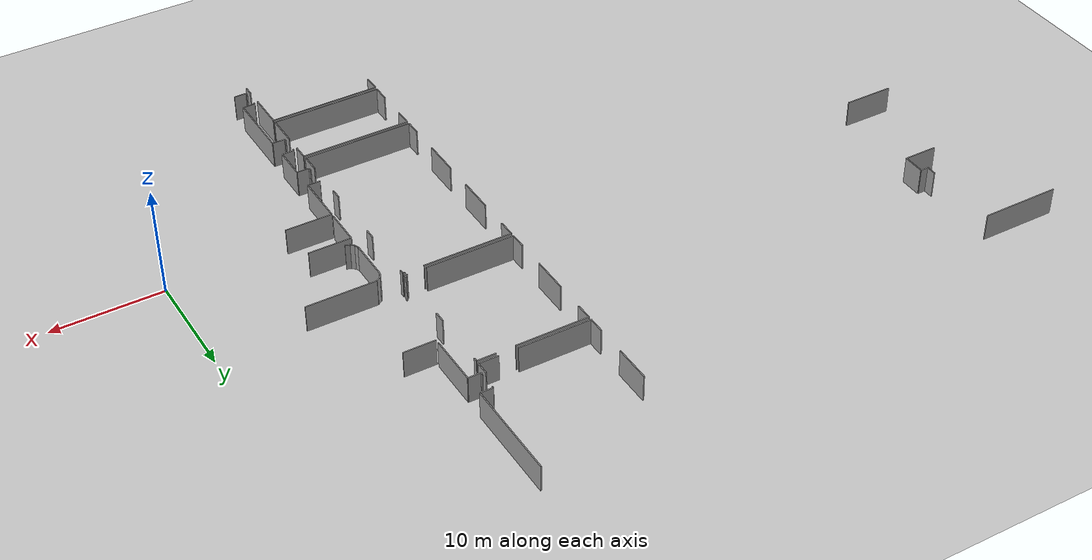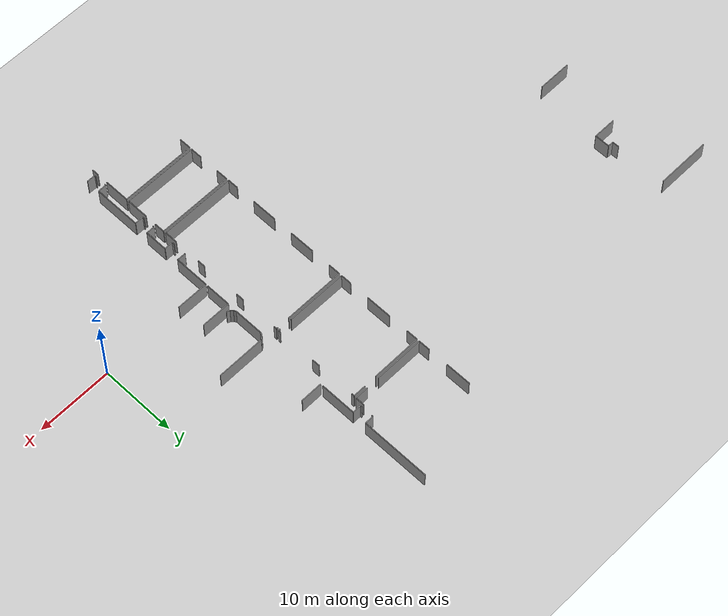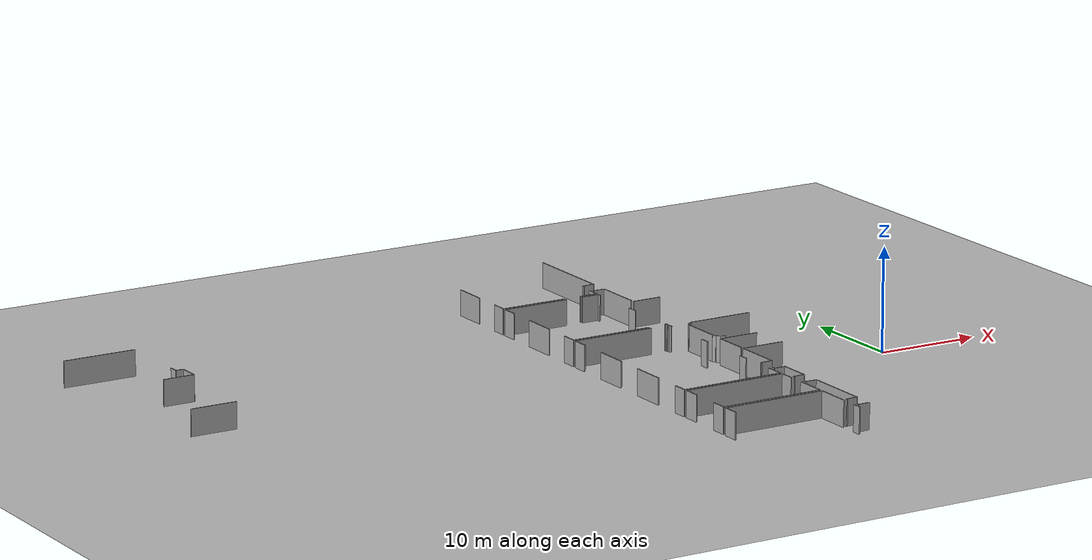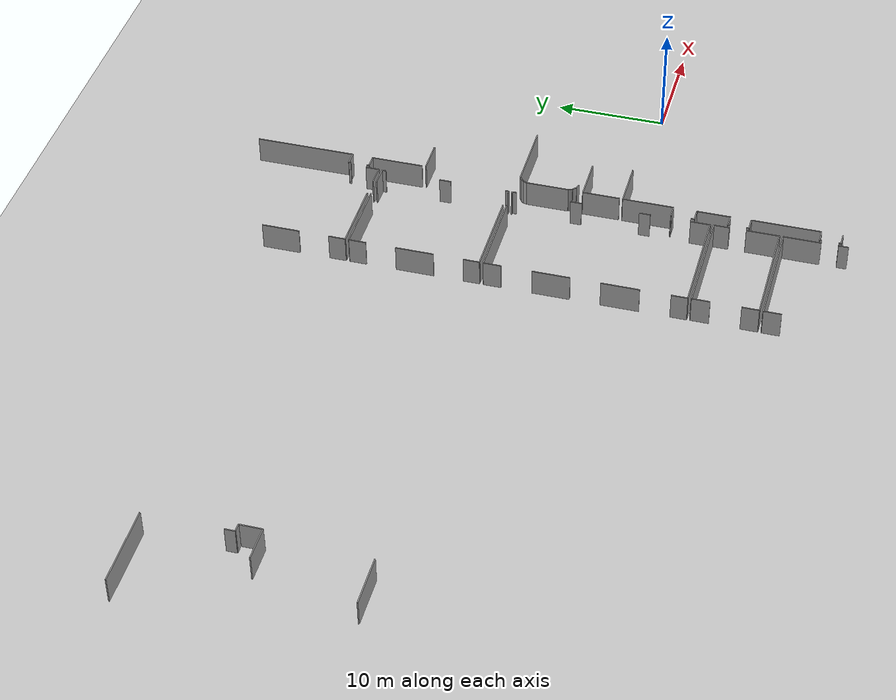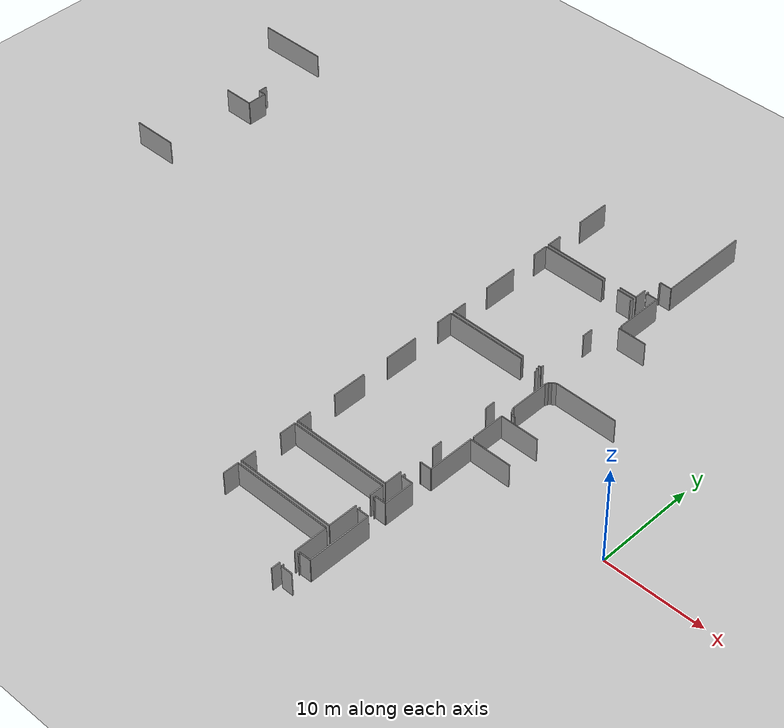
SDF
<sdf version="1.6">
 <world name="default">
  <model name="ground_plane">
   <static>1</static>
   <link name="link">
    <collision name="collision">
     <geometry><plane><normal>0 0 1</normal><size>100 100</size></plane></geometry>
     <surface><friction><ode><mu>100</mu><mu2>50</mu2></ode></friction></surface>
    </collision>
    <visual name="visual">
     <cast_shadows>0</cast_shadows>
     <geometry><plane><normal>0 0 1</normal><size>100 100</size></plane></geometry>
     <material>
      <script><uri>file://media/materials/scripts/gazebo.material</uri><name>Gazebo/Grey</name></script>
     </material>
    </visual>
   </link>
  </model>
  <model name="0510045922_A-40">
   <static>1</static>
   <link name="Wall_674">
    <collision name="Wall_674_Collision">
     <geometry><box><size>4.49615659156 0.1 2.5</size></box></geometry>
     <pose>2.24807829578 0 1.25 0 0 0</pose>
    </collision>
    <visual name="Wall_674_Visual">
     <pose>2.24807829578 0 1.25 0 0 0</pose>
     <geometry><box><size>4.49615659156 0.1 2.5</size></box></geometry>
     <material>
      <script><uri>file://media/materials/scripts/gazebo.material</uri><name>Gazebo/Grey</name></script>
      <ambient>1 1 1 1</ambient>
     </material>
    </visual>
    <pose>72.5084069391 -91.5883332274 0 0 0 -3.140914266</pose>
   </link>
   <link name="Wall_679">
    <collision name="Wall_679_Collision">
     <geometry><box><size>0.917582766728 0.1 2.5</size></box></geometry>
     <pose>0.458791383364 0 1.25 0 0 0</pose>
    </collision>
    <visual name="Wall_679_Visual">
     <pose>0.458791383364 0 1.25 0 0 0</pose>
     <geometry><box><size>0.917582766728 0.1 2.5</size></box></geometry>
     <material>
      <script><uri>file://media/materials/scripts/gazebo.material</uri><name>Gazebo/Grey</name></script>
      <ambient>1 1 1 1</ambient>
     </material>
    </visual>
    <pose>72.5391624833 -79.3992247569 0 0 0 -1.57079632679</pose>
   </link>
   <link name="Wall_680">
    <collision name="Wall_680_Collision">
     <geometry><box><size>0.738387240262 0.1 2.5</size></box></geometry>
     <pose>0.369193620131 0 1.25 0 0 0</pose>
    </collision>
    <visual name="Wall_680_Visual">
     <pose>0.369193620131 0 1.25 0 0 0</pose>
     <geometry><box><size>0.738387240262 0.1 2.5</size></box></geometry>
     <material>
      <script><uri>file://media/materials/scripts/gazebo.material</uri><name>Gazebo/Grey</name></script>
      <ambient>1 1 1 1</ambient>
     </material>
    </visual>
    <pose>72.5391624833 -80.3168075237 0 0 0 0.0</pose>
   </link>
   <link name="Wall_681">
    <collision name="Wall_681_Collision">
     <geometry><box><size>1.99860202072 0.1 2.5</size></box></geometry>
     <pose>0.999301010358 0 1.25 0 0 0</pose>
    </collision>
    <visual name="Wall_681_Visual">
     <pose>0.999301010358 0 1.25 0 0 0</pose>
     <geometry><box><size>1.99860202072 0.1 2.5</size></box></geometry>
     <material>
      <script><uri>file://media/materials/scripts/gazebo.material</uri><name>Gazebo/Grey</name></script>
      <ambient>1 1 1 1</ambient>
     </material>
    </visual>
    <pose>73.2775497236 -80.3168075237 0 0 0 -1.57079632679</pose>
   </link>
   <link name="Wall_682">
    <collision name="Wall_682_Collision">
     <geometry><box><size>3.05242422317 0.1 2.5</size></box></geometry>
     <pose>1.52621211158 0 1.25 0 0 0</pose>
    </collision>
    <visual name="Wall_682_Visual">
     <pose>1.52621211158 0 1.25 0 0 0</pose>
     <geometry><box><size>3.05242422317 0.1 2.5</size></box></geometry>
     <material>
      <script><uri>file://media/materials/scripts/gazebo.material</uri><name>Gazebo/Grey</name></script>
      <ambient>1 1 1 1</ambient>
     </material>
    </visual>
    <pose>73.2775497236 -82.3154095444 0 0 0 3.14159265359</pose>
   </link>
   <link name="Wall_691">
    <collision name="Wall_691_Collision">
     <geometry><box><size>7.15002859503 0.1 2.5</size></box></geometry>
     <pose>3.57501429752 0 1.25 0 0 0</pose>
    </collision>
    <visual name="Wall_691_Visual">
     <pose>3.57501429752 0 1.25 0 0 0</pose>
     <geometry><box><size>7.15002859503 0.1 2.5</size></box></geometry>
     <material>
      <script><uri>file://media/materials/scripts/gazebo.material</uri><name>Gazebo/Grey</name></script>
      <ambient>1 1 1 1</ambient>
     </material>
    </visual>
    <pose>72.5139988562 -72.4827857914 0 0 0 3.14159265359</pose>
   </link>
   <link name="Wall_1214">
    <collision name="Wall_1214_Collision">
     <geometry><box><size>1.52837262502 0.1 2.5</size></box></geometry>
     <pose>0.764186312512 0 1.25 0 0 0</pose>
    </collision>
    <visual name="Wall_1214_Visual">
     <pose>0.764186312512 0 1.25 0 0 0</pose>
     <geometry><box><size>1.52837262502 0.1 2.5</size></box></geometry>
     <material>
      <script><uri>file://media/materials/scripts/gazebo.material</uri><name>Gazebo/Grey</name></script>
      <ambient>1 1 1 1</ambient>
     </material>
    </visual>
    <pose>107.748668742 -78.0815657368 0 0 0 1.57079632679</pose>
   </link>
   <link name="Wall_1215">
    <collision name="Wall_1215_Collision">
     <geometry><box><size>3.42276164453 0.1 2.5</size></box></geometry>
     <pose>1.71138082227 0 1.25 0 0 0</pose>
    </collision>
    <visual name="Wall_1215_Visual">
     <pose>1.71138082227 0 1.25 0 0 0</pose>
     <geometry><box><size>3.42276164453 0.1 2.5</size></box></geometry>
     <material>
      <script><uri>file://media/materials/scripts/gazebo.material</uri><name>Gazebo/Grey</name></script>
      <ambient>1 1 1 1</ambient>
     </material>
    </visual>
    <pose>107.748668742 -73.8167122069 0 0 0 1.57079632679</pose>
   </link>
   <link name="Wall_1219">
    <collision name="Wall_1219_Collision">
     <geometry><box><size>1.21446273114 0.1 2.5</size></box></geometry>
     <pose>0.607231365572 0 1.25 0 0 0</pose>
    </collision>
    <visual name="Wall_1219_Visual">
     <pose>0.607231365572 0 1.25 0 0 0</pose>
     <geometry><box><size>1.21446273114 0.1 2.5</size></box></geometry>
     <material>
      <script><uri>file://media/materials/scripts/gazebo.material</uri><name>Gazebo/Grey</name></script>
      <ambient>1 1 1 1</ambient>
     </material>
    </visual>
    <pose>117.842333355 -76.8841329351 0 0 0 -1.57079632679</pose>
   </link>
   <link name="Wall_1220">
    <collision name="Wall_1220_Collision">
     <geometry><box><size>1.7980555379 0.1 2.5</size></box></geometry>
     <pose>0.899027768952 0 1.25 0 0 0</pose>
    </collision>
    <visual name="Wall_1220_Visual">
     <pose>0.899027768952 0 1.25 0 0 0</pose>
     <geometry><box><size>1.7980555379 0.1 2.5</size></box></geometry>
     <material>
      <script><uri>file://media/materials/scripts/gazebo.material</uri><name>Gazebo/Grey</name></script>
      <ambient>1 1 1 1</ambient>
     </material>
    </visual>
    <pose>117.842333355 -78.0985956663 0 0 0 3.14159265359</pose>
   </link>
   <link name="Wall_1221">
    <collision name="Wall_1221_Collision">
     <geometry><box><size>6.5702705296 0.1 2.5</size></box></geometry>
     <pose>3.2851352648 0 1.25 0 0 0</pose>
    </collision>
    <visual name="Wall_1221_Visual">
     <pose>3.2851352648 0 1.25 0 0 0</pose>
     <geometry><box><size>6.5702705296 0.1 2.5</size></box></geometry>
     <material>
      <script><uri>file://media/materials/scripts/gazebo.material</uri><name>Gazebo/Grey</name></script>
      <ambient>1 1 1 1</ambient>
     </material>
    </visual>
    <pose>114.318917201 -78.0985956663 0 0 0 3.13900068292</pose>
   </link>
   <link name="Wall_1222">
    <collision name="Wall_1222_Collision">
     <geometry><box><size>4.72415326937 0.1 2.5</size></box></geometry>
     <pose>2.36207663468 0 1.25 0 0 0</pose>
    </collision>
    <visual name="Wall_1222_Visual">
     <pose>2.36207663468 0 1.25 0 0 0</pose>
     <geometry><box><size>4.72415326937 0.1 2.5</size></box></geometry>
     <material>
      <script><uri>file://media/materials/scripts/gazebo.material</uri><name>Gazebo/Grey</name></script>
      <ambient>1 1 1 1</ambient>
     </material>
    </visual>
    <pose>119.322666328 -81.8085785092 0 0 0 1.57079632679</pose>
   </link>
   <link name="Wall_1223">
    <collision name="Wall_1223_Collision">
     <geometry><box><size>1.14024274004 0.1 2.5</size></box></geometry>
     <pose>0.57012137002 0 1.25 0 0 0</pose>
    </collision>
    <visual name="Wall_1223_Visual">
     <pose>0.57012137002 0 1.25 0 0 0</pose>
     <geometry><box><size>1.14024274004 0.1 2.5</size></box></geometry>
     <material>
      <script><uri>file://media/materials/scripts/gazebo.material</uri><name>Gazebo/Grey</name></script>
      <ambient>1 1 1 1</ambient>
     </material>
    </visual>
    <pose>119.322666328 -77.0844252399 0 0 0 3.14159265359</pose>
   </link>
   <link name="Wall_1224">
    <collision name="Wall_1224_Collision">
     <geometry><box><size>0.234860519794 0.1 2.5</size></box></geometry>
     <pose>0.117430259897 0 1.25 0 0 0</pose>
    </collision>
    <visual name="Wall_1224_Visual">
     <pose>0.117430259897 0 1.25 0 0 0</pose>
     <geometry><box><size>0.234860519794 0.1 2.5</size></box></geometry>
     <material>
      <script><uri>file://media/materials/scripts/gazebo.material</uri><name>Gazebo/Grey</name></script>
      <ambient>1 1 1 1</ambient>
     </material>
    </visual>
    <pose>118.182423588 -77.0844252399 0 0 0 1.57079632679</pose>
   </link>
   <link name="Wall_1225">
    <collision name="Wall_1225_Collision">
     <geometry><box><size>0.185804155811 0.1 2.5</size></box></geometry>
     <pose>0.0929020779056 0 1.25 0 0 0</pose>
    </collision>
    <visual name="Wall_1225_Visual">
     <pose>0.0929020779056 0 1.25 0 0 0</pose>
     <geometry><box><size>0.185804155811 0.1 2.5</size></box></geometry>
     <material>
      <script><uri>file://media/materials/scripts/gazebo.material</uri><name>Gazebo/Grey</name></script>
      <ambient>1 1 1 1</ambient>
     </material>
    </visual>
    <pose>118.182423588 -75.3471182563 0 0 0 1.57079632679</pose>
   </link>
   <link name="Wall_1226">
    <collision name="Wall_1226_Collision">
     <geometry><box><size>1.15828938171 0.1 2.5</size></box></geometry>
     <pose>0.579144690856 0 1.25 0 0 0</pose>
    </collision>
    <visual name="Wall_1226_Visual">
     <pose>0.579144690856 0 1.25 0 0 0</pose>
     <geometry><box><size>1.15828938171 0.1 2.5</size></box></geometry>
     <material>
      <script><uri>file://media/materials/scripts/gazebo.material</uri><name>Gazebo/Grey</name></script>
      <ambient>1 1 1 1</ambient>
     </material>
    </visual>
    <pose>118.182423588 -75.1613141005 0 0 0 0.0</pose>
   </link>
   <link name="Wall_1227">
    <collision name="Wall_1227_Collision">
     <geometry><box><size>9.07796911737 0.1 2.5</size></box></geometry>
     <pose>4.53898455868 0 1.25 0 0 0</pose>
    </collision>
    <visual name="Wall_1227_Visual">
     <pose>4.53898455868 0 1.25 0 0 0</pose>
     <geometry><box><size>9.07796911737 0.1 2.5</size></box></geometry>
     <material>
      <script><uri>file://media/materials/scripts/gazebo.material</uri><name>Gazebo/Grey</name></script>
      <ambient>1 1 1 1</ambient>
     </material>
    </visual>
    <pose>119.340712969 -75.1613141005 0 0 0 1.57079632679</pose>
   </link>
   <link name="Wall_1241">
    <collision name="Wall_1241_Collision">
     <geometry><box><size>1.47448687806 0.1 2.5</size></box></geometry>
     <pose>0.737243439029 0 1.25 0 0 0</pose>
    </collision>
    <visual name="Wall_1241_Visual">
     <pose>0.737243439029 0 1.25 0 0 0</pose>
     <geometry><box><size>1.47448687806 0.1 2.5</size></box></geometry>
     <material>
      <script><uri>file://media/materials/scripts/gazebo.material</uri><name>Gazebo/Grey</name></script>
      <ambient>1 1 1 1</ambient>
     </material>
    </visual>
    <pose>107.747397852 -90.333202008 0 0 0 1.57079632679</pose>
   </link>
   <link name="Wall_1242">
    <collision name="Wall_1242_Collision">
     <geometry><box><size>3.45605896931 0.1 2.5</size></box></geometry>
     <pose>1.72802948465 0 1.25 0 0 0</pose>
    </collision>
    <visual name="Wall_1242_Visual">
     <pose>1.72802948465 0 1.25 0 0 0</pose>
     <geometry><box><size>3.45605896931 0.1 2.5</size></box></geometry>
     <material>
      <script><uri>file://media/materials/scripts/gazebo.material</uri><name>Gazebo/Grey</name></script>
      <ambient>1 1 1 1</ambient>
     </material>
    </visual>
    <pose>107.747397852 -86.1644277817 0 0 0 1.57079632679</pose>
   </link>
   <link name="Wall_1243">
    <collision name="Wall_1243_Collision">
     <geometry><box><size>1.55124864968 0.1 2.5</size></box></geometry>
     <pose>0.77562432484 0 1.25 0 0 0</pose>
    </collision>
    <visual name="Wall_1243_Visual">
     <pose>0.77562432484 0 1.25 0 0 0</pose>
     <geometry><box><size>1.55124864968 0.1 2.5</size></box></geometry>
     <material>
      <script><uri>file://media/materials/scripts/gazebo.material</uri><name>Gazebo/Grey</name></script>
      <ambient>1 1 1 1</ambient>
     </material>
    </visual>
    <pose>107.747397852 -79.9881553028 0 0 0 1.57079632679</pose>
   </link>
   <link name="Wall_1244">
    <collision name="Wall_1244_Collision">
     <geometry><box><size>6.61117112537 0.1 2.5</size></box></geometry>
     <pose>3.30558556269 0 1.25 0 0 0</pose>
    </collision>
    <visual name="Wall_1244_Visual">
     <pose>3.30558556269 0 1.25 0 0 0</pose>
     <geometry><box><size>6.61117112537 0.1 2.5</size></box></geometry>
     <material>
      <script><uri>file://media/materials/scripts/gazebo.material</uri><name>Gazebo/Grey</name></script>
      <ambient>1 1 1 1</ambient>
     </material>
    </visual>
    <pose>107.747397852 -78.4369066531 0 0 0 0.0</pose>
   </link>
   <link name="Wall_1245">
    <collision name="Wall_1245_Collision">
     <geometry><box><size>1.71976869797 0.1 2.5</size></box></geometry>
     <pose>0.859884348986 0 1.25 0 0 0</pose>
    </collision>
    <visual name="Wall_1245_Visual">
     <pose>0.859884348986 0 1.25 0 0 0</pose>
     <geometry><box><size>1.71976869797 0.1 2.5</size></box></geometry>
     <material>
      <script><uri>file://media/materials/scripts/gazebo.material</uri><name>Gazebo/Grey</name></script>
      <ambient>1 1 1 1</ambient>
     </material>
    </visual>
    <pose>116.073254115 -78.4369066531 0 0 0 0.0</pose>
   </link>
   <link name="Wall_1246">
    <collision name="Wall_1246_Collision">
     <geometry><box><size>0.37415009214 0.1 2.5</size></box></geometry>
     <pose>0.18707504607 0 1.25 0 0 0</pose>
    </collision>
    <visual name="Wall_1246_Visual">
     <pose>0.18707504607 0 1.25 0 0 0</pose>
     <geometry><box><size>0.37415009214 0.1 2.5</size></box></geometry>
     <material>
      <script><uri>file://media/materials/scripts/gazebo.material</uri><name>Gazebo/Grey</name></script>
      <ambient>1 1 1 1</ambient>
     </material>
    </visual>
    <pose>117.793022812 -78.4369066531 0 0 0 -1.57079632679</pose>
   </link>
   <link name="Wall_1247">
    <collision name="Wall_1247_Collision">
     <geometry><box><size>1.07136048802 0.1 2.5</size></box></geometry>
     <pose>0.535680244011 0 1.25 0 0 0</pose>
    </collision>
    <visual name="Wall_1247_Visual">
     <pose>0.535680244011 0 1.25 0 0 0</pose>
     <geometry><box><size>1.07136048802 0.1 2.5</size></box></geometry>
     <material>
      <script><uri>file://media/materials/scripts/gazebo.material</uri><name>Gazebo/Grey</name></script>
      <ambient>1 1 1 1</ambient>
     </material>
    </visual>
    <pose>117.793022812 -83.885975726 0 0 0 -1.57079632679</pose>
   </link>
   <link name="Wall_1248">
    <collision name="Wall_1248_Collision">
     <geometry><box><size>0.301709347398 0.1 2.5</size></box></geometry>
     <pose>0.150854673699 0 1.25 0 0 0</pose>
    </collision>
    <visual name="Wall_1248_Visual">
     <pose>0.150854673699 0 1.25 0 0 0</pose>
     <geometry><box><size>0.301709347398 0.1 2.5</size></box></geometry>
     <material>
      <script><uri>file://media/materials/scripts/gazebo.material</uri><name>Gazebo/Grey</name></script>
      <ambient>1 1 1 1</ambient>
     </material>
    </visual>
    <pose>117.793022812 -90.0589438902 0 0 0 -1.57079632679</pose>
   </link>
   <link name="Wall_1249">
    <collision name="Wall_1249_Collision">
     <geometry><box><size>0.249602846794 0.1 2.5</size></box></geometry>
     <pose>0.124801423397 0 1.25 0 0 0</pose>
    </collision>
    <visual name="Wall_1249_Visual">
     <pose>0.124801423397 0 1.25 0 0 0</pose>
     <geometry><box><size>0.249602846794 0.1 2.5</size></box></geometry>
     <material>
      <script><uri>file://media/materials/scripts/gazebo.material</uri><name>Gazebo/Grey</name></script>
      <ambient>1 1 1 1</ambient>
     </material>
    </visual>
    <pose>117.793022812 -90.3606532376 0 0 0 3.14159265359</pose>
   </link>
   <link name="Wall_1250">
    <collision name="Wall_1250_Collision">
     <geometry><box><size>8.06206618029 0.1 2.5</size></box></geometry>
     <pose>4.03103309015 0 1.25 0 0 0</pose>
    </collision>
    <visual name="Wall_1250_Visual">
     <pose>4.03103309015 0 1.25 0 0 0</pose>
     <geometry><box><size>8.06206618029 0.1 2.5</size></box></geometry>
     <material>
      <script><uri>file://media/materials/scripts/gazebo.material</uri><name>Gazebo/Grey</name></script>
      <ambient>1 1 1 1</ambient>
     </material>
    </visual>
    <pose>115.809417297 -90.3606532376 0 0 0 3.13818766013</pose>
   </link>
   <link name="Wall_1251">
    <collision name="Wall_1251_Collision">
     <geometry><box><size>2.89915485798 0.1 2.5</size></box></geometry>
     <pose>1.44957742899 0 1.25 0 0 0</pose>
    </collision>
    <visual name="Wall_1251_Visual">
     <pose>1.44957742899 0 1.25 0 0 0</pose>
     <geometry><box><size>2.89915485798 0.1 2.5</size></box></geometry>
     <material>
      <script><uri>file://media/materials/scripts/gazebo.material</uri><name>Gazebo/Grey</name></script>
      <ambient>1 1 1 1</ambient>
     </material>
    </visual>
    <pose>119.337408655 -82.1435851814 0 0 0 0.0</pose>
   </link>
   <link name="Wall_1320">
    <collision name="Wall_1320_Collision">
     <geometry><box><size>0.43718070726 0.1 2.5</size></box></geometry>
     <pose>0.21859035363 0 1.25 0 0 0</pose>
    </collision>
    <visual name="Wall_1320_Visual">
     <pose>0.21859035363 0 1.25 0 0 0</pose>
     <geometry><box><size>0.43718070726 0.1 2.5</size></box></geometry>
     <material>
      <script><uri>file://media/materials/scripts/gazebo.material</uri><name>Gazebo/Grey</name></script>
      <ambient>1 1 1 1</ambient>
     </material>
    </visual>
    <pose>120.225760946 -96.2774099257 0 0 0 2.8240707925</pose>
   </link>
   <link name="Wall_1321">
    <collision name="Wall_1321_Collision">
     <geometry><box><size>0.413396983698 0.1 2.5</size></box></geometry>
     <pose>0.206698491849 0 1.25 0 0 0</pose>
    </collision>
    <visual name="Wall_1321_Visual">
     <pose>0.206698491849 0 1.25 0 0 0</pose>
     <geometry><box><size>0.413396983698 0.1 2.5</size></box></geometry>
     <material>
      <script><uri>file://media/materials/scripts/gazebo.material</uri><name>Gazebo/Grey</name></script>
      <ambient>1 1 1 1</ambient>
     </material>
    </visual>
    <pose>119.810434009 -96.1409163119 0 0 0 2.3648899232</pose>
   </link>
   <link name="Wall_1322">
    <collision name="Wall_1322_Collision">
     <geometry><box><size>0.370329658123 0.1 2.5</size></box></geometry>
     <pose>0.185164829061 0 1.25 0 0 0</pose>
    </collision>
    <visual name="Wall_1322_Visual">
     <pose>0.185164829061 0 1.25 0 0 0</pose>
     <geometry><box><size>0.370329658123 0.1 2.5</size></box></geometry>
     <material>
      <script><uri>file://media/materials/scripts/gazebo.material</uri><name>Gazebo/Grey</name></script>
      <ambient>1 1 1 1</ambient>
     </material>
    </visual>
    <pose>119.515587469 -95.8511533329 0 0 0 1.9490085453</pose>
   </link>
   <link name="Wall_1323">
    <collision name="Wall_1323_Collision">
     <geometry><box><size>3.85969371545 0.1 2.5</size></box></geometry>
     <pose>1.92984685772 0 1.25 0 0 0</pose>
    </collision>
    <visual name="Wall_1323_Visual">
     <pose>1.92984685772 0 1.25 0 0 0</pose>
     <geometry><box><size>3.85969371545 0.1 2.5</size></box></geometry>
     <material>
      <script><uri>file://media/materials/scripts/gazebo.material</uri><name>Gazebo/Grey</name></script>
      <ambient>1 1 1 1</ambient>
     </material>
    </visual>
    <pose>119.378839677 -95.5069962509 0 0 0 1.57079632679</pose>
   </link>
   <link name="Wall_1324">
    <collision name="Wall_1324_Collision">
     <geometry><box><size>0.340563400906 0.1 2.5</size></box></geometry>
     <pose>0.170281700453 0 1.25 0 0 0</pose>
    </collision>
    <visual name="Wall_1324_Visual">
     <pose>0.170281700453 0 1.25 0 0 0</pose>
     <geometry><box><size>0.340563400906 0.1 2.5</size></box></geometry>
     <material>
      <script><uri>file://media/materials/scripts/gazebo.material</uri><name>Gazebo/Grey</name></script>
      <ambient>1 1 1 1</ambient>
     </material>
    </visual>
    <pose>119.378839677 -91.6473025354 0 0 0 1.24644960169</pose>
   </link>
   <link name="Wall_1325">
    <collision name="Wall_1325_Collision">
     <geometry><box><size>0.294637207036 0.1 2.5</size></box></geometry>
     <pose>0.147318603518 0 1.25 0 0 0</pose>
    </collision>
    <visual name="Wall_1325_Visual">
     <pose>0.147318603518 0 1.25 0 0 0</pose>
     <geometry><box><size>0.294637207036 0.1 2.5</size></box></geometry>
     <material>
      <script><uri>file://media/materials/scripts/gazebo.material</uri><name>Gazebo/Grey</name></script>
      <ambient>1 1 1 1</ambient>
     </material>
    </visual>
    <pose>119.487373705 -91.3244964097 0 0 0 0.866006472638</pose>
   </link>
   <link name="Wall_1326">
    <collision name="Wall_1326_Collision">
     <geometry><box><size>0.410316913596 0.1 2.5</size></box></geometry>
     <pose>0.205158456798 0 1.25 0 0 0</pose>
    </collision>
    <visual name="Wall_1326_Visual">
     <pose>0.205158456798 0 1.25 0 0 0</pose>
     <geometry><box><size>0.410316913596 0.1 2.5</size></box></geometry>
     <material>
      <script><uri>file://media/materials/scripts/gazebo.material</uri><name>Gazebo/Grey</name></script>
      <ambient>1 1 1 1</ambient>
     </material>
    </visual>
    <pose>119.678261422 -91.1000571901 0 0 0 0.553805865945</pose>
   </link>
   <link name="Wall_1327">
    <collision name="Wall_1327_Collision">
     <geometry><box><size>6.34225074665 0.1 2.5</size></box></geometry>
     <pose>3.17112537332 0 1.25 0 0 0</pose>
    </collision>
    <visual name="Wall_1327_Visual">
     <pose>3.17112537332 0 1.25 0 0 0</pose>
     <geometry><box><size>6.34225074665 0.1 2.5</size></box></geometry>
     <material>
      <script><uri>file://media/materials/scripts/gazebo.material</uri><name>Gazebo/Grey</name></script>
      <ambient>1 1 1 1</ambient>
     </material>
    </visual>
    <pose>120.027247887 -90.8842600241 0 0 0 0.0</pose>
   </link>
   <link name="Wall_1334">
    <collision name="Wall_1334_Collision">
     <geometry><box><size>3.37090932198 0.1 2.5</size></box></geometry>
     <pose>1.68545466099 0 1.25 0 0 0</pose>
    </collision>
    <visual name="Wall_1334_Visual">
     <pose>1.68545466099 0 1.25 0 0 0</pose>
     <geometry><box><size>3.37090932198 0.1 2.5</size></box></geometry>
     <material>
      <script><uri>file://media/materials/scripts/gazebo.material</uri><name>Gazebo/Grey</name></script>
      <ambient>1 1 1 1</ambient>
     </material>
    </visual>
    <pose>119.329783313 -100.243858423 0 0 0 1.57079632679</pose>
   </link>
   <link name="Wall_1335">
    <collision name="Wall_1335_Collision">
     <geometry><box><size>3.8899409036 0.1 2.5</size></box></geometry>
     <pose>1.9449704518 0 1.25 0 0 0</pose>
    </collision>
    <visual name="Wall_1335_Visual">
     <pose>1.9449704518 0 1.25 0 0 0</pose>
     <geometry><box><size>3.8899409036 0.1 2.5</size></box></geometry>
     <material>
      <script><uri>file://media/materials/scripts/gazebo.material</uri><name>Gazebo/Grey</name></script>
      <ambient>1 1 1 1</ambient>
     </material>
    </visual>
    <pose>119.329783313 -96.8729491008 0 0 0 0.0</pose>
   </link>
   <link name="Wall_1339">
    <collision name="Wall_1339_Collision">
     <geometry><box><size>1.46228633158 0.1 2.5</size></box></geometry>
     <pose>0.731143165788 0 1.25 0 0 0</pose>
    </collision>
    <visual name="Wall_1339_Visual">
     <pose>0.731143165788 0 1.25 0 0 0</pose>
     <geometry><box><size>1.46228633158 0.1 2.5</size></box></geometry>
     <material>
      <script><uri>file://media/materials/scripts/gazebo.material</uri><name>Gazebo/Grey</name></script>
      <ambient>1 1 1 1</ambient>
     </material>
    </visual>
    <pose>107.740535045 -108.825163627 0 0 0 1.57079632679</pose>
   </link>
   <link name="Wall_1340">
    <collision name="Wall_1340_Collision">
     <geometry><box><size>3.43953739595 0.1 2.5</size></box></geometry>
     <pose>1.71976869797 0 1.25 0 0 0</pose>
    </collision>
    <visual name="Wall_1340_Visual">
     <pose>1.71976869797 0 1.25 0 0 0</pose>
     <geometry><box><size>3.43953739595 0.1 2.5</size></box></geometry>
     <material>
      <script><uri>file://media/materials/scripts/gazebo.material</uri><name>Gazebo/Grey</name></script>
      <ambient>1 1 1 1</ambient>
     </material>
    </visual>
    <pose>107.740535045 -104.614195844 0 0 0 1.57079632679</pose>
   </link>
   <link name="Wall_1341">
    <collision name="Wall_1341_Collision">
     <geometry><box><size>3.41030692 0.1 2.5</size></box></geometry>
     <pose>1.70515346 0 1.25 0 0 0</pose>
    </collision>
    <visual name="Wall_1341_Visual">
     <pose>1.70515346 0 1.25 0 0 0</pose>
     <geometry><box><size>3.41030692 0.1 2.5</size></box></geometry>
     <material>
      <script><uri>file://media/materials/scripts/gazebo.material</uri><name>Gazebo/Grey</name></script>
      <ambient>1 1 1 1</ambient>
     </material>
    </visual>
    <pose>107.740535045 -98.4602910339 0 0 0 1.57079632679</pose>
   </link>
   <link name="Wall_1342">
    <collision name="Wall_1342_Collision">
     <geometry><box><size>1.61098049183 0.1 2.5</size></box></geometry>
     <pose>0.805490245917 0 1.25 0 0 0</pose>
    </collision>
    <visual name="Wall_1342_Visual">
     <pose>0.805490245917 0 1.25 0 0 0</pose>
     <geometry><box><size>1.61098049183 0.1 2.5</size></box></geometry>
     <material>
      <script><uri>file://media/materials/scripts/gazebo.material</uri><name>Gazebo/Grey</name></script>
      <ambient>1 1 1 1</ambient>
     </material>
    </visual>
    <pose>107.740535045 -92.2957107454 0 0 0 1.57079632679</pose>
   </link>
   <link name="Wall_1343">
    <collision name="Wall_1343_Collision">
     <geometry><box><size>8.13039334054 0.1 2.5</size></box></geometry>
     <pose>4.06519667027 0 1.25 0 0 0</pose>
    </collision>
    <visual name="Wall_1343_Visual">
     <pose>4.06519667027 0 1.25 0 0 0</pose>
     <geometry><box><size>8.13039334054 0.1 2.5</size></box></geometry>
     <material>
      <script><uri>file://media/materials/scripts/gazebo.material</uri><name>Gazebo/Grey</name></script>
      <ambient>1 1 1 1</ambient>
     </material>
    </visual>
    <pose>107.740535045 -90.6847302535 0 0 0 0.0</pose>
   </link>
   <link name="Wall_1344">
    <collision name="Wall_1344_Collision">
     <geometry><box><size>0.213763741501 0.1 2.5</size></box></geometry>
     <pose>0.10688187075 0 1.25 0 0 0</pose>
    </collision>
    <visual name="Wall_1344_Visual">
     <pose>0.10688187075 0 1.25 0 0 0</pose>
     <geometry><box><size>0.213763741501 0.1 2.5</size></box></geometry>
     <material>
      <script><uri>file://media/materials/scripts/gazebo.material</uri><name>Gazebo/Grey</name></script>
      <ambient>1 1 1 1</ambient>
     </material>
    </visual>
    <pose>117.569600305 -90.6847302535 0 0 0 0.0</pose>
   </link>
   <link name="Wall_1345">
    <collision name="Wall_1345_Collision">
     <geometry><box><size>0.404651458347 0.1 2.5</size></box></geometry>
     <pose>0.202325729173 0 1.25 0 0 0</pose>
    </collision>
    <visual name="Wall_1345_Visual">
     <pose>0.202325729173 0 1.25 0 0 0</pose>
     <geometry><box><size>0.404651458347 0.1 2.5</size></box></geometry>
     <material>
      <script><uri>file://media/materials/scripts/gazebo.material</uri><name>Gazebo/Grey</name></script>
      <ambient>1 1 1 1</ambient>
     </material>
    </visual>
    <pose>117.783364047 -90.6847302535 0 0 0 -1.57079632679</pose>
   </link>
   <link name="Wall_1346">
    <collision name="Wall_1346_Collision">
     <geometry><box><size>1.02255830209 0.1 2.5</size></box></geometry>
     <pose>0.511279151045 0 1.25 0 0 0</pose>
    </collision>
    <visual name="Wall_1346_Visual">
     <pose>0.511279151045 0 1.25 0 0 0</pose>
     <geometry><box><size>1.02255830209 0.1 2.5</size></box></geometry>
     <material>
      <script><uri>file://media/materials/scripts/gazebo.material</uri><name>Gazebo/Grey</name></script>
      <ambient>1 1 1 1</ambient>
     </material>
    </visual>
    <pose>117.783364047 -96.0862680308 0 0 0 -1.57079632679</pose>
   </link>
   <link name="Wall_1347">
    <collision name="Wall_1347_Collision">
     <geometry><box><size>1.01086611171 0.1 2.5</size></box></geometry>
     <pose>0.505433055856 0 1.25 0 0 0</pose>
    </collision>
    <visual name="Wall_1347_Visual">
     <pose>0.505433055856 0 1.25 0 0 0</pose>
     <geometry><box><size>1.01086611171 0.1 2.5</size></box></geometry>
     <material>
      <script><uri>file://media/materials/scripts/gazebo.material</uri><name>Gazebo/Grey</name></script>
      <ambient>1 1 1 1</ambient>
     </material>
    </visual>
    <pose>117.783364047 -102.394458918 0 0 0 -1.57079632679</pose>
   </link>
   <link name="Wall_1348">
    <collision name="Wall_1348_Collision">
     <geometry><box><size>1.77721293766 0.1 2.5</size></box></geometry>
     <pose>0.888606468831 0 1.25 0 0 0</pose>
    </collision>
    <visual name="Wall_1348_Visual">
     <pose>0.888606468831 0 1.25 0 0 0</pose>
     <geometry><box><size>1.77721293766 0.1 2.5</size></box></geometry>
     <material>
      <script><uri>file://media/materials/scripts/gazebo.material</uri><name>Gazebo/Grey</name></script>
      <ambient>1 1 1 1</ambient>
     </material>
    </visual>
    <pose>117.783364047 -107.050746648 0 0 0 -1.57079632679</pose>
   </link>
   <link name="Wall_1349">
    <collision name="Wall_1349_Collision">
     <geometry><box><size>10.0428293909 0.1 2.5</size></box></geometry>
     <pose>5.02141469546 0 1.25 0 0 0</pose>
    </collision>
    <visual name="Wall_1349_Visual">
     <pose>5.02141469546 0 1.25 0 0 0</pose>
     <geometry><box><size>10.0428293909 0.1 2.5</size></box></geometry>
     <material>
      <script><uri>file://media/materials/scripts/gazebo.material</uri><name>Gazebo/Grey</name></script>
      <ambient>1 1 1 1</ambient>
     </material>
    </visual>
    <pose>117.783364047 -108.827959586 0 0 0 3.14131425011</pose>
   </link>
   <link name="Wall_1350">
    <collision name="Wall_1350_Collision">
     <geometry><box><size>1.53243947385 0.1 2.5</size></box></geometry>
     <pose>0.766219736926 0 1.25 0 0 0</pose>
    </collision>
    <visual name="Wall_1350_Visual">
     <pose>0.766219736926 0 1.25 0 0 0</pose>
     <geometry><box><size>1.53243947385 0.1 2.5</size></box></geometry>
     <material>
      <script><uri>file://media/materials/scripts/gazebo.material</uri><name>Gazebo/Grey</name></script>
      <ambient>1 1 1 1</ambient>
     </material>
    </visual>
    <pose>107.763665248 -115.033208362 0 0 0 1.57079632679</pose>
   </link>
   <link name="Wall_1351">
    <collision name="Wall_1351_Collision">
     <geometry><box><size>1.62775624325 0.1 2.5</size></box></geometry>
     <pose>0.813878121624 0 1.25 0 0 0</pose>
    </collision>
    <visual name="Wall_1351_Visual">
     <pose>0.813878121624 0 1.25 0 0 0</pose>
     <geometry><box><size>1.62775624325 0.1 2.5</size></box></geometry>
     <material>
      <script><uri>file://media/materials/scripts/gazebo.material</uri><name>Gazebo/Grey</name></script>
      <ambient>1 1 1 1</ambient>
     </material>
    </visual>
    <pose>107.763665248 -110.76733812 0 0 0 1.57079632679</pose>
   </link>
   <link name="Wall_1352">
    <collision name="Wall_1352_Collision">
     <geometry><box><size>10.0575713287 0.1 2.5</size></box></geometry>
     <pose>5.02878566436 0 1.25 0 0 0</pose>
    </collision>
    <visual name="Wall_1352_Visual">
     <pose>5.02878566436 0 1.25 0 0 0</pose>
     <geometry><box><size>10.0575713287 0.1 2.5</size></box></geometry>
     <material>
      <script><uri>file://media/materials/scripts/gazebo.material</uri><name>Gazebo/Grey</name></script>
      <ambient>1 1 1 1</ambient>
     </material>
    </visual>
    <pose>107.763665248 -109.139581877 0 0 0 0.0</pose>
   </link>
   <link name="Wall_1353">
    <collision name="Wall_1353_Collision">
     <geometry><box><size>1.40840058461 0.1 2.5</size></box></geometry>
     <pose>0.704200292305 0 1.25 0 0 0</pose>
    </collision>
    <visual name="Wall_1353_Visual">
     <pose>0.704200292305 0 1.25 0 0 0</pose>
     <geometry><box><size>1.40840058461 0.1 2.5</size></box></geometry>
     <material>
      <script><uri>file://media/materials/scripts/gazebo.material</uri><name>Gazebo/Grey</name></script>
      <ambient>1 1 1 1</ambient>
     </material>
    </visual>
    <pose>117.821236576 -109.139581877 0 0 0 -1.57079632679</pose>
   </link>
   <link name="Wall_1354">
    <collision name="Wall_1354_Collision">
     <geometry><box><size>2.95837834403 0.1 2.5</size></box></geometry>
     <pose>1.47918917201 0 1.25 0 0 0</pose>
    </collision>
    <visual name="Wall_1354_Visual">
     <pose>1.47918917201 0 1.25 0 0 0</pose>
     <geometry><box><size>2.95837834403 0.1 2.5</size></box></geometry>
     <material>
      <script><uri>file://media/materials/scripts/gazebo.material</uri><name>Gazebo/Grey</name></script>
      <ambient>1 1 1 1</ambient>
     </material>
    </visual>
    <pose>117.821236576 -112.072288238 0 0 0 -1.57079632679</pose>
   </link>
   <link name="Wall_1355">
    <collision name="Wall_1355_Collision">
     <geometry><box><size>10.0575716499 0.1 2.5</size></box></geometry>
     <pose>5.02878582495 0 1.25 0 0 0</pose>
    </collision>
    <visual name="Wall_1355_Visual">
     <pose>5.02878582495 0 1.25 0 0 0</pose>
     <geometry><box><size>10.0575716499 0.1 2.5</size></box></geometry>
     <material>
      <script><uri>file://media/materials/scripts/gazebo.material</uri><name>Gazebo/Grey</name></script>
      <ambient>1 1 1 1</ambient>
     </material>
    </visual>
    <pose>117.821236576 -115.030666582 0 0 0 -3.1413399305</pose>
   </link>
   <link name="Wall_1357">
    <collision name="Wall_1357_Collision">
     <geometry><box><size>1.57920823537 0.1 2.5</size></box></geometry>
     <pose>0.789604117684 0 1.25 0 0 0</pose>
    </collision>
    <visual name="Wall_1357_Visual">
     <pose>0.789604117684 0 1.25 0 0 0</pose>
     <geometry><box><size>1.57920823537 0.1 2.5</size></box></geometry>
     <material>
      <script><uri>file://media/materials/scripts/gazebo.material</uri><name>Gazebo/Grey</name></script>
      <ambient>1 1 1 1</ambient>
     </material>
    </visual>
    <pose>107.742060113 -116.950219229 0 0 0 1.57079632679</pose>
   </link>
   <link name="Wall_1358">
    <collision name="Wall_1358_Collision">
     <geometry><box><size>10.0832433119 0.1 2.5</size></box></geometry>
     <pose>5.04162165597 0 1.25 0 0 0</pose>
    </collision>
    <visual name="Wall_1358_Visual">
     <pose>5.04162165597 0 1.25 0 0 0</pose>
     <geometry><box><size>10.0832433119 0.1 2.5</size></box></geometry>
     <material>
      <script><uri>file://media/materials/scripts/gazebo.material</uri><name>Gazebo/Grey</name></script>
      <ambient>1 1 1 1</ambient>
     </material>
    </visual>
    <pose>107.742060113 -115.371010993 0 0 0 0.0</pose>
   </link>
   <link name="Wall_1359">
    <collision name="Wall_1359_Collision">
     <geometry><box><size>3.38616000508 0.1 2.5</size></box></geometry>
     <pose>1.69308000254 0 1.25 0 0 0</pose>
    </collision>
    <visual name="Wall_1359_Visual">
     <pose>1.69308000254 0 1.25 0 0 0</pose>
     <geometry><box><size>3.38616000508 0.1 2.5</size></box></geometry>
     <material>
      <script><uri>file://media/materials/scripts/gazebo.material</uri><name>Gazebo/Grey</name></script>
      <ambient>1 1 1 1</ambient>
     </material>
    </visual>
    <pose>117.825303425 -115.371010993 0 0 0 -1.57079632679</pose>
   </link>
   <link name="Wall_1360">
    <collision name="Wall_1360_Collision">
     <geometry><box><size>0.890131537142 0.1 2.5</size></box></geometry>
     <pose>0.445065768571 0 1.25 0 0 0</pose>
    </collision>
    <visual name="Wall_1360_Visual">
     <pose>0.445065768571 0 1.25 0 0 0</pose>
     <geometry><box><size>0.890131537142 0.1 2.5</size></box></geometry>
     <material>
      <script><uri>file://media/materials/scripts/gazebo.material</uri><name>Gazebo/Grey</name></script>
      <ambient>1 1 1 1</ambient>
     </material>
    </visual>
    <pose>117.825303425 -120.284272733 0 0 0 -1.57079632679</pose>
   </link>
   <link name="Wall_1374">
    <collision name="Wall_1374_Collision">
     <geometry><box><size>6.27311431658 0.1 2.5</size></box></geometry>
     <pose>3.13655715829 0 1.25 0 0 0</pose>
    </collision>
    <visual name="Wall_1374_Visual">
     <pose>3.13655715829 0 1.25 0 0 0</pose>
     <geometry><box><size>6.27311431658 0.1 2.5</size></box></geometry>
     <material>
      <script><uri>file://media/materials/scripts/gazebo.material</uri><name>Gazebo/Grey</name></script>
      <ambient>1 1 1 1</ambient>
     </material>
    </visual>
    <pose>119.327241533 -118.527139861 0 0 0 1.57079632679</pose>
   </link>
   <link name="Wall_1375">
    <collision name="Wall_1375_Collision">
     <geometry><box><size>1.13922602783 0.1 2.5</size></box></geometry>
     <pose>0.569613013916 0 1.25 0 0 0</pose>
    </collision>
    <visual name="Wall_1375_Visual">
     <pose>0.569613013916 0 1.25 0 0 0</pose>
     <geometry><box><size>1.13922602783 0.1 2.5</size></box></geometry>
     <material>
      <script><uri>file://media/materials/scripts/gazebo.material</uri><name>Gazebo/Grey</name></script>
      <ambient>1 1 1 1</ambient>
     </material>
    </visual>
    <pose>119.327241533 -112.254025545 0 0 0 3.14159265359</pose>
   </link>
   <link name="Wall_1376">
    <collision name="Wall_1376_Collision">
     <geometry><box><size>0.23130202707 0.1 2.5</size></box></geometry>
     <pose>0.115651013535 0 1.25 0 0 0</pose>
    </collision>
    <visual name="Wall_1376_Visual">
     <pose>0.115651013535 0 1.25 0 0 0</pose>
     <geometry><box><size>0.23130202707 0.1 2.5</size></box></geometry>
     <material>
      <script><uri>file://media/materials/scripts/gazebo.material</uri><name>Gazebo/Grey</name></script>
      <ambient>1 1 1 1</ambient>
     </material>
    </visual>
    <pose>118.188015505 -112.254025545 0 0 0 1.57079632679</pose>
   </link>
   <link name="Wall_1377">
    <collision name="Wall_1377_Collision">
     <geometry><box><size>0.185804155811 0.1 2.5</size></box></geometry>
     <pose>0.0929020779056 0 1.25 0 0 0</pose>
    </collision>
    <visual name="Wall_1377_Visual">
     <pose>0.0929020779056 0 1.25 0 0 0</pose>
     <geometry><box><size>0.185804155811 0.1 2.5</size></box></geometry>
     <material>
      <script><uri>file://media/materials/scripts/gazebo.material</uri><name>Gazebo/Grey</name></script>
      <ambient>1 1 1 1</ambient>
     </material>
    </visual>
    <pose>118.188015505 -110.542390545 0 0 0 1.57079632679</pose>
   </link>
   <link name="Wall_1378">
    <collision name="Wall_1378_Collision">
     <geometry><box><size>1.1199084959 0.1 2.5</size></box></geometry>
     <pose>0.559954247951 0 1.25 0 0 0</pose>
    </collision>
    <visual name="Wall_1378_Visual">
     <pose>0.559954247951 0 1.25 0 0 0</pose>
     <geometry><box><size>1.1199084959 0.1 2.5</size></box></geometry>
     <material>
      <script><uri>file://media/materials/scripts/gazebo.material</uri><name>Gazebo/Grey</name></script>
      <ambient>1 1 1 1</ambient>
     </material>
    </visual>
    <pose>118.188015505 -110.356586389 0 0 0 0.0</pose>
   </link>
   <link name="Wall_1379">
    <collision name="Wall_1379_Collision">
     <geometry><box><size>3.02675223994 0.1 2.5</size></box></geometry>
     <pose>1.51337611997 0 1.25 0 0 0</pose>
    </collision>
    <visual name="Wall_1379_Visual">
     <pose>1.51337611997 0 1.25 0 0 0</pose>
     <geometry><box><size>3.02675223994 0.1 2.5</size></box></geometry>
     <material>
      <script><uri>file://media/materials/scripts/gazebo.material</uri><name>Gazebo/Grey</name></script>
      <ambient>1 1 1 1</ambient>
     </material>
    </visual>
    <pose>119.307924001 -110.356586389 0 0 0 1.57079632679</pose>
   </link>
   <link name="Wall_1380">
    <collision name="Wall_1380_Collision">
     <geometry><box><size>1.12016267395 0.1 2.5</size></box></geometry>
     <pose>0.560081336977 0 1.25 0 0 0</pose>
    </collision>
    <visual name="Wall_1380_Visual">
     <pose>0.560081336977 0 1.25 0 0 0</pose>
     <geometry><box><size>1.12016267395 0.1 2.5</size></box></geometry>
     <material>
      <script><uri>file://media/materials/scripts/gazebo.material</uri><name>Gazebo/Grey</name></script>
      <ambient>1 1 1 1</ambient>
     </material>
    </visual>
    <pose>119.307924001 -107.329834149 0 0 0 3.14159265359</pose>
   </link>
   <link name="Wall_1381">
    <collision name="Wall_1381_Collision">
     <geometry><box><size>0.333227425812 0.1 2.5</size></box></geometry>
     <pose>0.166613712906 0 1.25 0 0 0</pose>
    </collision>
    <visual name="Wall_1381_Visual">
     <pose>0.166613712906 0 1.25 0 0 0</pose>
     <geometry><box><size>0.333227425812 0.1 2.5</size></box></geometry>
     <material>
      <script><uri>file://media/materials/scripts/gazebo.material</uri><name>Gazebo/Grey</name></script>
      <ambient>1 1 1 1</ambient>
     </material>
    </visual>
    <pose>118.187761327 -107.329834149 0 0 0 1.57079632679</pose>
   </link>
   <link name="Wall_1382">
    <collision name="Wall_1382_Collision">
     <geometry><box><size>0.0793035521383 0.1 2.5</size></box></geometry>
     <pose>0.0396517760691 0 1.25 0 0 0</pose>
    </collision>
    <visual name="Wall_1382_Visual">
     <pose>0.0396517760691 0 1.25 0 0 0</pose>
     <geometry><box><size>0.0793035521383 0.1 2.5</size></box></geometry>
     <material>
      <script><uri>file://media/materials/scripts/gazebo.material</uri><name>Gazebo/Grey</name></script>
      <ambient>1 1 1 1</ambient>
     </material>
    </visual>
    <pose>118.187761327 -105.28014234 0 0 0 1.57079632679</pose>
   </link>
   <link name="Wall_1383">
    <collision name="Wall_1383_Collision">
     <geometry><box><size>1.12956726187 0.1 2.5</size></box></geometry>
     <pose>0.564783630933 0 1.25 0 0 0</pose>
    </collision>
    <visual name="Wall_1383_Visual">
     <pose>0.564783630933 0 1.25 0 0 0</pose>
     <geometry><box><size>1.12956726187 0.1 2.5</size></box></geometry>
     <material>
      <script><uri>file://media/materials/scripts/gazebo.material</uri><name>Gazebo/Grey</name></script>
      <ambient>1 1 1 1</ambient>
     </material>
    </visual>
    <pose>118.187761327 -105.200838788 0 0 0 0.0</pose>
   </link>
   <link name="Wall_1384">
    <collision name="Wall_1384_Collision">
     <geometry><box><size>4.64586642943 0.1 2.5</size></box></geometry>
     <pose>2.32293321472 0 1.25 0 0 0</pose>
    </collision>
    <visual name="Wall_1384_Visual">
     <pose>2.32293321472 0 1.25 0 0 0</pose>
     <geometry><box><size>4.64586642943 0.1 2.5</size></box></geometry>
     <material>
      <script><uri>file://media/materials/scripts/gazebo.material</uri><name>Gazebo/Grey</name></script>
      <ambient>1 1 1 1</ambient>
     </material>
    </visual>
    <pose>119.317328589 -105.200838788 0 0 0 1.57079632679</pose>
   </link>
   <link name="Wall_1385">
    <collision name="Wall_1385_Collision">
     <geometry><box><size>4.23562305395 0.1 2.5</size></box></geometry>
     <pose>2.11781152697 0 1.25 0 0 0</pose>
    </collision>
    <visual name="Wall_1385_Visual">
     <pose>2.11781152697 0 1.25 0 0 0</pose>
     <geometry><box><size>4.23562305395 0.1 2.5</size></box></geometry>
     <material>
      <script><uri>file://media/materials/scripts/gazebo.material</uri><name>Gazebo/Grey</name></script>
      <ambient>1 1 1 1</ambient>
     </material>
    </visual>
    <pose>119.317328589 -100.554972358 0 0 0 0.0</pose>
   </link>
   <link name="Wall_1400">
    <collision name="Wall_1400_Collision">
     <geometry><box><size>1.13719260342 0.1 2.5</size></box></geometry>
     <pose>0.568596301709 0 1.25 0 0 0</pose>
    </collision>
    <visual name="Wall_1400_Visual">
     <pose>0.568596301709 0 1.25 0 0 0</pose>
     <geometry><box><size>1.13719260342 0.1 2.5</size></box></geometry>
     <material>
      <script><uri>file://media/materials/scripts/gazebo.material</uri><name>Gazebo/Grey</name></script>
      <ambient>1 1 1 1</ambient>
     </material>
    </visual>
    <pose>119.327749889 -120.45558874 0 0 0 3.14159265359</pose>
   </link>
   <link name="Wall_1401">
    <collision name="Wall_1401_Collision">
     <geometry><box><size>0.213509563449 0.1 2.5</size></box></geometry>
     <pose>0.106754781725 0 1.25 0 0 0</pose>
    </collision>
    <visual name="Wall_1401_Visual">
     <pose>0.106754781725 0 1.25 0 0 0</pose>
     <geometry><box><size>0.213509563449 0.1 2.5</size></box></geometry>
     <material>
      <script><uri>file://media/materials/scripts/gazebo.material</uri><name>Gazebo/Grey</name></script>
      <ambient>1 1 1 1</ambient>
     </material>
    </visual>
    <pose>118.190557285 -120.45558874 0 0 0 1.57079632679</pose>
   </link>
   <link name="Wall_1402">
    <collision name="Wall_1402_Collision">
     <geometry><box><size>0.165469911673 0.1 2.5</size></box></geometry>
     <pose>0.0827349558366 0 1.25 0 0 0</pose>
    </collision>
    <visual name="Wall_1402_Visual">
     <pose>0.0827349558366 0 1.25 0 0 0</pose>
     <geometry><box><size>0.165469911673 0.1 2.5</size></box></geometry>
     <material>
      <script><uri>file://media/materials/scripts/gazebo.material</uri><name>Gazebo/Grey</name></script>
      <ambient>1 1 1 1</ambient>
     </material>
    </visual>
    <pose>118.190557285 -118.723873674 0 0 0 1.57079632679</pose>
   </link>
   <link name="Wall_1403">
    <collision name="Wall_1403_Collision">
     <geometry><box><size>1.13711411457 0.1 2.5</size></box></geometry>
     <pose>0.568557057286 0 1.25 0 0 0</pose>
    </collision>
    <visual name="Wall_1403_Visual">
     <pose>0.568557057286 0 1.25 0 0 0</pose>
     <geometry><box><size>1.13711411457 0.1 2.5</size></box></geometry>
     <material>
      <script><uri>file://media/materials/scripts/gazebo.material</uri><name>Gazebo/Grey</name></script>
      <ambient>1 1 1 1</ambient>
     </material>
    </visual>
    <pose>118.190557285 -118.558403762 0 0 0 0.0274975397439</pose>
   </link>
   <pose>-134.15 101.210036856 0 0 0 0</pose>
  </model>
 </world>
</sdf>
